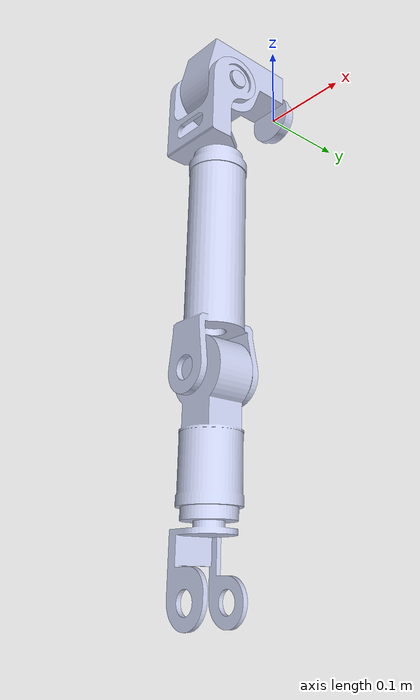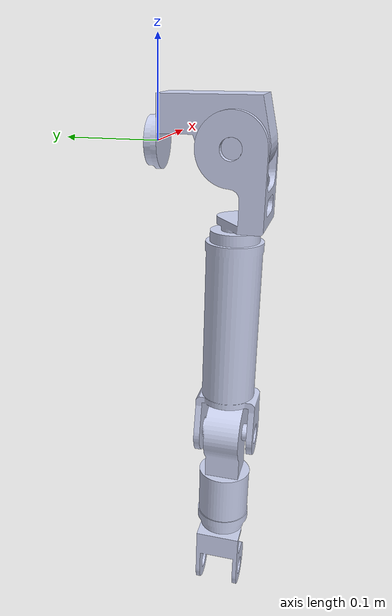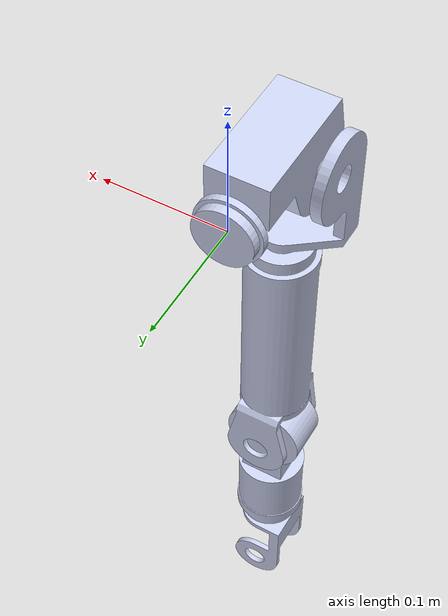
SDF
<?xml version='1.0'?>
<sdf version='1.6'>
  <model name='TEO_rightArm'>

    <link name='FrontalRightShoulder_link'>
      <pose>0 0 0 0 -0 0</pose>
      <inertial>
        <pose>-0.002267 -0.056164 0.008456 0 -0 0</pose>
        <mass>2</mass>
        <inertia>
          <ixx>0.004226791</ixx>
          <ixy>0.0000844</ixy>
          <ixz>-0.0000117</ixz>
          <iyy>0.002127281</iyy>
          <iyz>-0.000280493</iyz>
          <izz>0.004093161</izz>
        </inertia>
      </inertial>
      <visual name='FrontalRightShoulder_visual'>
        <geometry>
          <mesh>
            <uri>model://teo/meshes/visual/FrontalRightShoulder.dae</uri>
          </mesh>
        </geometry>
        <material>
          <ambient>0.792157 0.819608 0.933333 1</ambient>
          <diffuse>0.792157 0.819608 0.933333 1</diffuse>
          <specular>0.633726 0.655686 0.746667 1</specular>
          <emissive>0 0 0 1</emissive>
        </material>
      </visual>
      <collision name='FrontalRightShoulder_collision'>
        <geometry>
          <mesh>
            <uri>model://teo/meshes/collision/FrontalRightShoulder.stl</uri>
          </mesh>
        </geometry>
      </collision>
    </link>

    <joint name='FrontalRightShoulder' type='revolute'>
      <parent>TEO_trunk::FrontalTrunk_link</parent>
      <child>TEO_rightArm::FrontalRightShoulder_link</child>
      <axis>
        <xyz>0 1 0</xyz>
        <limit>
          <lower>-1.71</lower>
          <upper>1.85</upper>
        </limit>
        <dynamics>
          <damping>0.001</damping>
          <friction>0.7</friction>
        </dynamics>
      </axis>
    </joint>

    <link name='SagittalRightShoulder_link'>
      <pose>0 -0.084 0 0 -0 0</pose>
      <inertial>
        <pose>-0.008472 -0.004826 -0.027321 0 -0 0</pose>
        <mass>1</mass>
        <inertia>
          <ixx>0.001610932</ixx>
          <ixy>-0.000069</ixy>
          <ixz>-0.000214886</ixz>
          <iyy>0.002187776</iyy>
          <iyz>-0.000069</iyz>
          <izz>0.001173533</izz>
        </inertia>
      </inertial>
      <visual name='SagittalRightShoulder_visual'>
        <geometry>
          <mesh>
            <uri>model://teo/meshes/visual/SagittalRightShoulder.dae</uri>
          </mesh>
        </geometry>
        <material>
          <ambient>0.792157 0.819608 0.933333 1</ambient>
          <diffuse>0.792157 0.819608 0.933333 1</diffuse>
          <specular>0.633726 0.655686 0.746667 1</specular>
          <emissive>0 0 0 1</emissive>
        </material>
      </visual>
      <collision name='SagittalRightShoulder_collision'>
        <geometry>
          <mesh>
            <uri>model://teo/meshes/collision/SagittalRightShoulder.stl</uri>
          </mesh>
        </geometry>
      </collision>
    </link>

    <joint name='SagittalRightShoulder' type='revolute'>
      <parent>TEO_rightArm::FrontalRightShoulder_link</parent>
      <child>TEO_rightArm::SagittalRightShoulder_link</child>
      <axis>
        <xyz>1 0 0</xyz>
        <limit>
          <lower>-1.32</lower>
          <upper>0.39</upper>
        </limit>
        <dynamics>
          <damping>0.001</damping>
          <friction>0.7</friction>
        </dynamics>
      </axis>
    </joint>

    <link name='AxialRightShoulder_link'>
      <pose>0 -0.084 -0.329 0 -0 0</pose>
      <inertial>
        <pose>0.000347 0.000245 0.107382 0 -0 0</pose>
        <mass>1</mass>
      </inertial>
      <visual name='AxialRightShoulder_visual'>
        <geometry>
          <mesh>
            <uri>model://teo/meshes/visual/AxialRightShoulder.dae</uri>
          </mesh>
        </geometry>
        <material>
          <ambient>0.792157 0.819608 0.933333 1</ambient>
          <diffuse>0.792157 0.819608 0.933333 1</diffuse>
          <specular>0.633726 0.655686 0.746667 1</specular>
          <emissive>0 0 0 1</emissive>
        </material>
      </visual>
      <collision name='AxialRightShoulder_collision'>
        <geometry>
          <mesh>
            <uri>model://teo/meshes/collision/AxialRightShoulder.stl</uri>
          </mesh>
        </geometry>
      </collision>
    </link>

    <joint name='AxialRightShoulder' type='revolute'>
      <parent>TEO_rightArm::SagittalRightShoulder_link</parent>
      <child>TEO_rightArm::AxialRightShoulder_link</child>
      <axis>
        <xyz>0 0 1</xyz>
        <limit>
          <lower>-1.4</lower>
          <upper>0.99</upper>
        </limit>
        <dynamics>
          <damping>0.001</damping>
          <friction>0.7</friction>
        </dynamics>
      </axis>
    </joint>

    <link name='FrontalRightElbow_link'>
      <pose>0 -0.084 -0.329 0 -0 0</pose>
      <inertial>
        <pose>0.000237 -0.00004 -0.04998 0 -0 0</pose>
        <mass>1</mass>
        <inertia>
          <ixx>0.002590029</ixx>
          <ixy>0</ixy>
          <ixz>0</ixz>
          <iyy>0.00262307</iyy>
          <iyz>0</iyz>
          <izz>0.000446024</izz>
        </inertia>
      </inertial>
      <visual name='FrontalRightElbow_visual'>
        <geometry>
          <mesh>
            <uri>model://teo/meshes/visual/FrontalRightElbow.dae</uri>
          </mesh>
        </geometry>
        <material>
          <ambient>0.792157 0.819608 0.933333 1</ambient>
          <diffuse>0.792157 0.819608 0.933333 1</diffuse>
          <specular>0.633726 0.655686 0.746667 1</specular>
          <emissive>0 0 0 1</emissive>
        </material>
      </visual>
      <collision name='FrontalRightElbow_collision'>
        <geometry>
          <mesh>
            <uri>model://teo/meshes/collision/FrontalRightElbow.stl</uri>
          </mesh>
        </geometry>
      </collision>
    </link>

    <joint name='FrontalRightElbow' type='revolute'>
      <parent>TEO_rightArm::AxialRightShoulder_link</parent>
      <child>TEO_rightArm::FrontalRightElbow_link</child>
      <axis>
        <xyz>0 1 0</xyz>
        <limit>
          <lower>-1.74</lower>
          <upper>1.72</upper>
        </limit>
        <dynamics>
          <damping>0.001</damping>
          <friction>0.7</friction>
        </dynamics>
      </axis>
    </joint>

    <link name='AxialRightWrist_link'>
      <pose>0 -0.084 -0.531 0 -0 0</pose>
      <inertial>
        <pose>-0.001151 0.000603 0.02464 0 -0 0</pose>
        <mass>0.63149</mass>
      </inertial>
      <visual name='AxialRightWrist_visual'>
        <geometry>
          <mesh>
            <uri>model://teo/meshes/visual/AxialRightWrist.dae</uri>
          </mesh>
        </geometry>
        <material>
          <ambient>0.792157 0.819608 0.933333 1</ambient>
          <diffuse>0.792157 0.819608 0.933333 1</diffuse>
          <specular>0.633726 0.655686 0.746667 1</specular>
          <emissive>0 0 0 1</emissive>
        </material>
      </visual>
      <collision name='AxialRightWrist_collision'>
        <geometry>
          <mesh>
            <uri>model://teo/meshes/collision/AxialRightWrist.stl</uri>
          </mesh>
        </geometry>
      </collision>
    </link>

    <joint name='AxialRightWrist' type='revolute'>
      <parent>TEO_rightArm::FrontalRightElbow_link</parent>
      <child>TEO_rightArm::AxialRightWrist_link</child>
      <axis>
        <xyz>0 0 1</xyz>
        <limit>
          <lower>-1.4</lower>
          <upper>1.74</upper>
        </limit>
        <dynamics>
          <damping>0.001</damping>
          <friction>0.7</friction>
        </dynamics>
      </axis>
    </joint>

    <link name='FrontalRightWrist_link'>
      <pose>0 -0.084 -0.531 0 -0 0</pose>
      <inertial>
        <pose>-0.002314 0.00007 -0.108635 0 -0 0</pose>
        <mass>0.72</mass>
        <inertia>
          <ixx>0.005329957</ixx>
          <ixy>0.000000102</ixy>
          <ixz>0.000114751</ixz>
          <iyy>0.005345282</iyy>
          <iyz>-0.00000807</iyz>
          <izz>0.000883179</izz>
        </inertia>
      </inertial>
      <visual name='FrontalRightWrist_visual'>
        <pose>0 0 0 -1.5708 0 0</pose>
        <geometry>
          <mesh>
            <scale>0.001 0.001 0.001</scale>
            <uri>model://teo/meshes/visual/FrontalRightWrist.dae</uri>
          </mesh>
        </geometry>
        <material>
          <ambient>0.792157 0.819608 0.933333 1</ambient>
          <diffuse>0.792157 0.819608 0.933333 1</diffuse>
          <specular>0.633726 0.655686 0.746667 1</specular>
          <emissive>0 0 0 1</emissive>
        </material>
      </visual>
      <collision name='FrontalRightWrist_collision'>
        <pose>0 0 0 -1.5708 0 0</pose>
        <geometry>
          <mesh>
            <scale>0.001 0.001 0.001</scale>
            <uri>model://teo/meshes/collision/FrontalRightWrist.stl</uri>
          </mesh>
        </geometry>
      </collision>
    </link>

    <joint name='FrontalRightWrist' type='revolute'>
      <parent>TEO_rightArm::AxialRightWrist_link</parent>
      <child>TEO_rightArm::FrontalRightWrist_link</child>
      <axis>
        <xyz>0 1 0</xyz>
        <limit>
          <lower>-2.01</lower>
          <upper>0.78</upper>
        </limit>
        <dynamics>
          <damping>0.001</damping>
          <friction>0.7</friction>
        </dynamics>
      </axis>
    </joint>

    <link name='RightSensorPlate_link'>
      <pose>0 -0.084 -0.63401 0 -0 0</pose>
      <inertial>
        <mass>0.001</mass> <!-- can't be zero! -->
      </inertial>
    </link>

    <joint name='RightSensorPlate' type='fixed'>
      <parent>TEO_rightArm::FrontalRightWrist_link</parent>
      <child>TEO_rightArm::RightSensorPlate_link</child>
      <pose>0 0 0 0 3.141593 0</pose>
      <sensor name="rightArm_ft" type="force_torque">
        <always_on>true</always_on>
        <update_rate>200</update_rate>
        <force_torque>
          <frame>sensor</frame>
          <measure_direction>child_to_parent</measure_direction>
        </force_torque>
        <plugin name='rightArm_ft_plugin' filename='libgazebo_yarp_forcetorque.so'>
          <yarpConfigurationString>(yarpDeviceName forceTorque_rightArm) (disableImplicitNetworkWrapper)</yarpConfigurationString>
        </plugin>
      </sensor>
    </joint>

    <plugin name='controlboard_rightArm' filename='libgazebo_yarp_controlboard.so'>
      <yarpConfigurationFile>model://teo/conf/gazebo_teo_rightArm.ini</yarpConfigurationFile>
    </plugin>

  </model>
</sdf>
